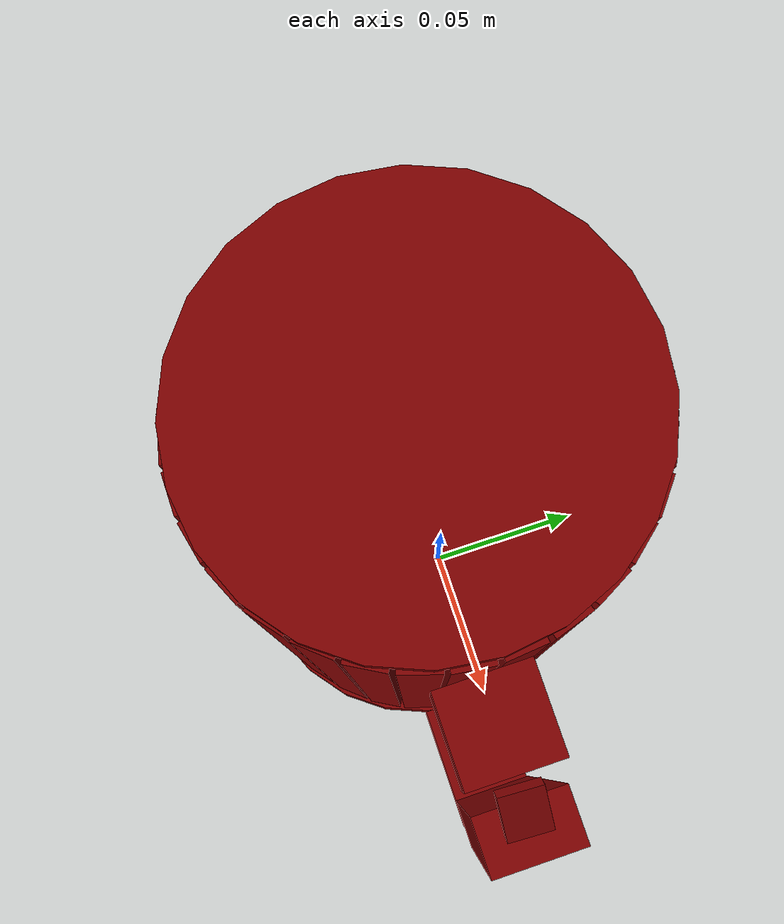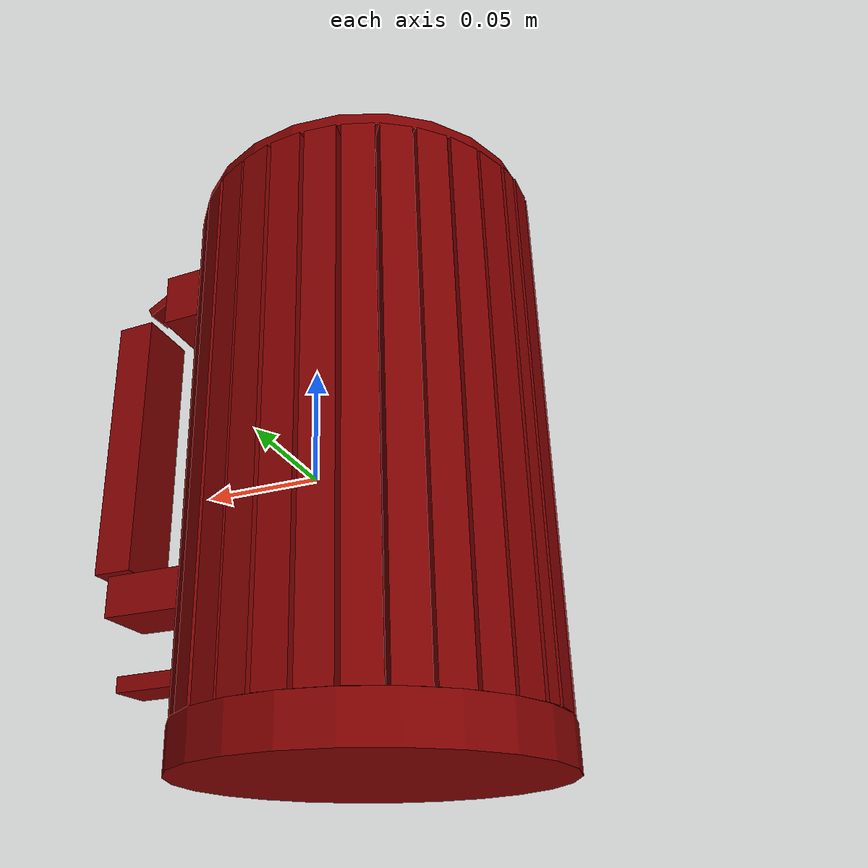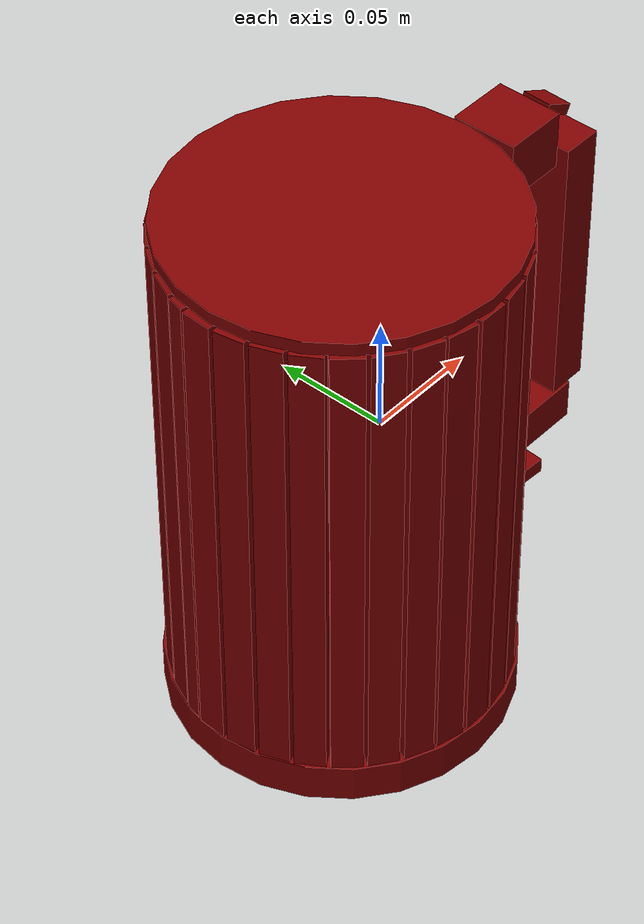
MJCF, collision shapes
<?xml version='1.0' encoding='UTF-8'?>
<mujoco model="model">
  <compiler angle="radian"/>
  <asset>
    <mesh file="visuals/Body001.obj" name="Body001_vis"/>
    <mesh file="visuals/Button001.obj" name="Button001_vis"/>
    <mesh file="visuals/Handle001.obj" name="Handle001_vis"/>
    <mesh file="visuals/Lever001.obj" name="Lever001_vis"/>
    <mesh file="visuals/Lid001.obj" name="Lid001_vis"/>
    <texture file="visuals/T_BC001.png" name="Body001_material" type="2d"/>
    <material name="Body001_material" rgba="1 1 1 1.0" texture="Body001_material" shininess="1" specular="1"/>
    <texture file="visuals/T_BC001.png" name="Handle001_material" type="2d"/>
    <material name="Handle001_material" rgba="1 1 1 1.0" texture="Handle001_material" shininess="1" specular="1"/>
    <texture file="visuals/T_BC001.png" name="Button001_material" type="2d"/>
    <material name="Button001_material" rgba="1 1 1 1.0" texture="Button001_material" shininess="0.2512328028678894" specular="0.3103448502657381"/>
    <texture file="visuals/T_BC001.png" name="Lever001_material" type="2d"/>
    <material name="Lever001_material" rgba="1 1 1 1.0" texture="Lever001_material" shininess="0.2512328028678894" specular="0.3103448502657381"/>
    <texture file="visuals/T_BC001.png" name="Lid001_material" type="2d"/>
    <material name="Lid001_material" rgba="1 1 1 1.0" texture="Lid001_material" shininess="0.2512328028678894" specular="0.3103448502657381"/>
  </asset>
  <default>
    <default class="visual">
      <geom conaffinity="0" contype="0" group="1" type="mesh"/>
    </default>
    <default class="collision">
      <geom group="0" rgba="0.5 0 0 0.5"/>
    </default>
    <default class="spawn">
      <geom group="0" rgba="1 1 1 0.5" contype="0" conaffinity="0"/>
      <site group="0" rgba="1 1 1 0.5"/>
    </default>
    <default class="region">
      <geom group="1" conaffinity="0" contype="0" rgba="0 1 0 0"/>
    </default>
  </default>
  <worldbody>
    <body>
      <body name="object">
        <geom mesh="Body001_vis" type="mesh" solimp="0.998 0.998 0.001" solref="0.001 1" density="100" friction="0.95 0.3 0.1" class="visual" material="Body001_material"/>
        <geom class="collision" type="cylinder" pos="-0.023023681715130806 -3.276069037383422e-05 -0.11071483790874481" size="0.07277010381221771 0.008798042312264442" quat="1.0 -8.146034957690063e-08 0.0 0.0"/>
        <geom class="collision" type="cylinder" pos="-0.023023683577775955 -3.2763189665274695e-05 -0.09461458027362823" size="0.01096278801560402 0.007078821305185556" quat="1.0 -8.146035668232798e-08 0.0 0.0"/>
        <body name="Handle001">
          <joint axis="0.0 0.0 1.0" pos="0.018864015117287636 -0.0031844403129070997 0.0412430614233017" limited="true" name="Handle001_joint" range="0.0 0.15" type="slide" damping="1" frictionloss="1" armature=".01" stiffness="0.05"/>
          <geom mesh="Handle001_vis" type="mesh" solimp="0.998 0.998 0.001" solref="0.001 1" density="100" friction="0.95 0.3 0.1" class="visual" material="Handle001_material"/>
          <geom class="collision" type="box" pos="-0.023034879937767982 -0.06774058938026428 0.005778426770120859" size="0.006442265119403601 0.003759863320738077 0.10746723413467407" quat="1.0 0.0 0.0 0.0"/>
          <geom class="collision" type="box" pos="0.004113842733204365 -0.061874181032180786 0.005778426770120859" size="0.006442171521484852 0.003759845159947872 0.10746721923351288" quat="4.348970890077908e-07 0.20617415010929108 -0.9785153269767761 3.672768400519999e-08"/>
          <geom class="collision" type="box" pos="-0.009210018441081047 -0.06623754650354385 0.005778426770120859" size="0.006442172918468714 0.003759845159947872 0.10746721923351288" quat="4.2588473547766625e-07 0.10693040490150452 -0.9942665100097656 9.05527670624906e-08"/>
          <geom class="collision" type="box" pos="0.01626894250512123 -0.05454995110630989 0.005778426770120859" size="0.006442171521484852 0.0037598456256091595 0.10746721923351288" quat="4.1167294284605305e-07 0.3320642411708832 -0.9432567954063416 1.349511933312897e-07"/>
          <geom class="collision" type="box" pos="0.026787778362631798 -0.04496612399816513 0.005778426770120859" size="0.006442171521484852 0.0037598456256091595 0.10746721923351288" quat="3.698584976064012e-07 0.41601479053497314 -0.9093578457832336 2.326648882444715e-07"/>
          <geom class="collision" type="box" pos="0.03528076782822609 -0.03377407789230347 0.005778426770120859" size="0.006442171987146139 0.0037598456256091595 0.10746721923351288" quat="4.2593117655087553e-07 0.5013291239738464 -0.865256667137146 1.2882948396963911e-07"/>
          <geom class="collision" type="box" pos="0.04107045754790306 -0.021115975454449654 0.005778426770120859" size="0.006442171987146139 0.0037598460912704468 0.10746721923351288" quat="3.0616217827628134e-07 0.5887382626533508 -0.8083237409591675 3.153313343773334e-07"/>
          <geom class="collision" type="box" pos="0.04581490531563759 -0.003122053574770689 -0.09600447863340378" size="0.009686942212283611 0.0037598449271172285 0.004450293257832527" quat="6.601778181902773e-07 0.6742482781410217 -0.7385047078132629 -8.071012302934832e-08"/>
          <geom class="collision" type="box" pos="0.044479336589574814 0.006276293192058802 0.01917729154229164" size="0.006442183628678322 0.0037598456256091595 0.09406835585832596" quat="-2.3746520128042903e-07 -0.7387588024139404 0.6739699244499207 -3.7231245642033173e-07"/>
          <geom class="collision" type="box" pos="0.041773878037929535 0.01991182379424572 0.005778426770120859" size="0.00644217012450099 0.0037598460912704468 0.10746721923351288" quat="2.7327934049026226e-07 0.8089416027069092 -0.5878890156745911 2.476132863193925e-07"/>
          <geom class="collision" type="box" pos="0.03625473007559776 0.03276817873120308 0.005778426770120859" size="0.006442171521484852 0.0037598449271172285 0.10746721923351288" quat="-3.189085973076544e-08 -0.8600682616233826 0.5101789236068726 -4.354070597401005e-07"/>
          <geom class="collision" type="box" pos="0.028138352558016777 0.04413112252950668 0.005778426770120859" size="0.006442170590162277 0.0037598460912704468 0.10746721923351288" quat="2.397534046849614e-07 0.9088814854621887 -0.41705453395843506 3.4146498251175217e-07"/>
          <geom class="collision" type="box" pos="0.01823635958135128 0.05381667613983154 0.005778426770120859" size="0.0064421710558235645 0.0037598456256091595 0.10746721923351288" quat="2.0099133735129726e-07 0.9453177452087402 -0.3261508345603943 3.5107305507153796e-07"/>
          <geom class="collision" type="box" pos="0.006151964422315359 0.06094106286764145 0.005778426770120859" size="0.0064421710558235645 0.0037598449271172285 0.10746721923351288" quat="1.5426923027916928e-07 0.9778256416320801 -0.20942065119743347 3.5980457369078067e-07"/>
          <geom class="collision" type="box" pos="-0.0066388617269694805 0.06565307825803757 0.005778426770120859" size="0.006442171987146139 0.0037598449271172285 0.10746721923351288" quat="1.2839821295074216e-07 0.9908782243728638 -0.13476021587848663 3.8386028222703317e-07"/>
          <geom class="collision" type="box" pos="-0.020278898999094963 0.06771973520517349 0.005778426770120859" size="0.006442171987146139 0.0037598456256091595 0.10746721923351288" quat="2.040321902541109e-07 0.9997295141220093 -0.02325650118291378 3.9859031630840036e-07"/>
          <geom class="collision" type="box" pos="-0.034031666815280914 0.06678034365177155 0.005778426770120859" size="0.0064421710558235645 0.0037598449271172285 0.10746721923351288" quat="1.0381260295844186e-07 -0.9973849654197693 -0.07227186858654022 -3.880241763454251e-07"/>
          <geom class="collision" type="box" pos="-0.047371089458465576 0.06317306309938431 0.005778426770120859" size="0.006442171521484852 0.003759845159947872 0.10746721923351288" quat="1.9359431835397345e-09 0.9829936027526855 0.18363972008228302 4.0075687479657063e-07"/>
          <geom class="collision" type="box" pos="-0.059733547270298004 0.056822746992111206 0.005778426770120859" size="0.0064421710558235645 0.0037598456256091595 0.10746721923351288" quat="-4.064979108875377e-08 0.9561119079589844 0.29300183057785034 3.903171830188512e-07"/>
          <geom class="collision" type="box" pos="-0.07036751508712769 0.04821787774562836 0.005778426770120859" size="0.006442171987146139 0.0037598456256091595 0.10746721923351288" quat="3.3606863780732965e-07 -0.9239467978477478 -0.3825210630893707 -3.0273454854068405e-07"/>
          <geom class="collision" type="box" pos="-0.07916026562452316 0.03773421421647072 0.005778426770120859" size="0.006442171987146139 0.0037598460912704468 0.10746721923351288" quat="-1.2643118907362805e-07 0.8839080333709717 0.4676608145236969 4.004001254998002e-07"/>
          <geom class="collision" type="box" pos="-0.08581119775772095 0.025785086676478386 0.005778426770120859" size="0.006442171987146139 0.0037598460912704468 0.10746721923351288" quat="4.767065604482923e-07 -0.8366203308105469 -0.5477831959724426 -1.5499915662076091e-07"/>
          <geom class="collision" type="box" pos="-0.0369294248521328 -0.06624718010425568 0.005778426770120859" size="0.0064421724528074265 0.0037598456256091595 0.10746721923351288" quat="4.3108633462907164e-07 -0.11771973967552185 -0.9930468797683716 -4.278658849443673e-08"/>
          <geom class="collision" type="box" pos="-0.05002386122941971 -0.06213487312197685 0.005778426770120859" size="0.006442171987146139 0.0037598456256091595 0.10746721923351288" quat="4.169533269759995e-07 -0.2019345611333847 -0.9793990254402161 -1.226243568908103e-07"/>
          <geom class="collision" type="box" pos="-0.062256887555122375 -0.05527814105153084 0.005778426770120859" size="0.006442171521484852 0.0037598456256091595 0.10746721923351288" quat="4.2050552906403027e-07 -0.3024821877479553 -0.9531550407409668 -1.0684529883064897e-07"/>
          <geom class="collision" type="box" pos="-0.07269997149705887 -0.04629600793123245 0.005778426770120859" size="0.006442171987146139 0.0037598456256091595 0.10746721923351288" quat="4.162581888067507e-07 -0.39777764678001404 -0.9174818396568298 -1.2875644017640298e-07"/>
          <geom class="collision" type="box" pos="-0.08097868412733078 -0.03514047712087631 0.005778426770120859" size="0.006442171987146139 0.0037598449271172285 0.10746721923351288" quat="3.63392075541924e-07 -0.4836215674877167 -0.8752772212028503 -2.3790701675352466e-07"/>
          <geom class="collision" type="box" pos="-0.0870208740234375 -0.02278553694486618 0.005778426770120859" size="0.006442170590162277 0.0037598456256091595 0.10746721923351288" quat="3.371456500644854e-07 -0.5654937028884888 -0.8247526288032532 -2.742099809438514e-07"/>
          <geom class="collision" type="box" pos="-0.09076343476772308 -0.009258224628865719 0.005778426770120859" size="0.00644217012450099 0.0037598449271172285 0.10746721923351288" quat="3.715065304277232e-07 -0.6412659883499146 -0.7673186659812927 -2.3088995249054278e-07"/>
          <geom class="collision" type="box" pos="-0.091529980301857 0.004629814065992832 0.005778426770120859" size="0.006442172918468714 0.0037598460912704468 0.10746721923351288" quat="1.5400815982502536e-06 -0.7232064008712769 -0.6906319856643677 9.131218234870175e-07"/>
          <geom class="collision" type="box" pos="-0.08988972008228302 0.015556933358311653 0.005778426770120859" size="0.003726500552147627 0.003759845159947872 0.10746721923351288" quat="3.066882356961287e-07 -0.7830078601837158 -0.6220118403434753 -2.646917209858657e-07"/>
          <geom class="collision" type="box" pos="0.07228168845176697 -0.007208599708974361 -0.039597008377313614" size="0.022511886432766914 0.014028203673660755 0.009019003249704838" quat="1.0 0.0 0.0 0.0"/>
          <geom class="collision" type="box" pos="0.06340934336185455 -0.007028752472251654 0.1050092801451683" size="0.013639543205499649 0.014208050444722176 0.012554212473332882" quat="1.0 0.0 0.0 0.0"/>
          <geom class="collision" type="box" pos="0.09318245202302933 -0.007028752472251654 0.032909683883190155" size="0.008785214275121689 0.014208050444722176 0.06187383458018303" quat="1.0 0.0 0.0 0.0"/>
          <geom class="collision" type="box" pos="0.044371120631694794 -0.007705533877015114 0.020427677780389786" size="0.006442182697355747 0.0037598456256091595 0.09281797707080841" quat="6.462651640504191e-07 0.6575609445571899 -0.7534013390541077 -8.177384103191798e-08"/>
          <body name="Button001">
            <joint axis="0.0 0.0 -1.0" pos="0.08598235994577408 -0.007813122123479843 0.11077475547790527" limited="true" name="Button001_joint" range="0.0 0.0025" type="slide" damping="1" frictionloss="1" armature=".01" stiffness="0.2" springref="-1"/>
            <geom mesh="Button001_vis" type="mesh" solimp="0.998 0.998 0.001" solref="0.001 1" density="100" friction="0.95 0.3 0.1" class="visual" material="Button001_material"/>
            <geom class="collision" type="box" pos="0.086179219186306 -0.0077461921609938145 0.1106448695063591" size="0.0066857365891337395 0.006490183062851429 0.002256079576909542" quat="0.974043607711792 -0.006441202946007252 0.22453685104846954 -0.027941640466451645"/>
          </body>
          <body name="Lever001">
            <joint axis="0.0 0.0 -1.0" pos="0.0663880705833435 -0.004385690670460463 -0.07669314742088318" limited="true" name="Lever001_joint" range="0.0 0.01" type="slide" damping="1" frictionloss="1" armature=".01" stiffness="0.2" springref="-1"/>
            <geom mesh="Lever001_vis" type="mesh" solimp="0.998 0.998 0.001" solref="0.001 1" density="100" friction="0.95 0.3 0.1" class="visual" material="Lever001_material"/>
            <geom class="collision" type="box" pos="0.06879474222660065 -0.005083506926894188 -0.07645479589700699" size="0.019173555076122284 0.00886817742139101 0.0033816301729530096" quat="0.9995887875556946 -8.142684748690954e-08 2.335827753441322e-09 -0.02867441438138485"/>
          </body>
          <body name="Lid001">
            <joint axis="0.0 1.0 0.0" pos="0.05128675326704979 -0.005694232415407896 0.11794690042734146" limited="true" name="Lid001_joint" range="0.0 1.5707963267948966" type="hinge" damping="1" frictionloss="1" armature=".01" stiffness="0.05"/>
            <geom mesh="Lid001_vis" type="mesh" solimp="0.998 0.998 0.001" solref="0.001 1" density="100" friction="0.95 0.3 0.1" class="visual" material="Lid001_material"/>
            <geom class="collision" type="cylinder" pos="-0.023023683577775955 -3.276097049820237e-05 0.1074153333902359" size="0.0625920295715332 0.005675722844898701" quat="1.0 -8.146034247147327e-08 0.0 0.0"/>
            <geom class="collision" type="cylinder" pos="-0.023023681715130806 -3.2760748581495136e-05 0.11643494665622711" size="0.07064686715602875 0.0027365137357264757" quat="1.0 -8.146034247147327e-08 0.0 0.0"/>
          </body>
        </body>
        <geom class="region" name="reg_main" type="box" pos="-1.6763806343078613e-08 1.862645149230957e-09 3.725290298461914e-09" size="0.10280673205852509 0.07296589761972427 0.11952702701091766"/>
      </body>
    </body>
  </worldbody>
  <actuator>
    <motor name="Handle001_joint_actuator" joint="Handle001_joint" gear="20"/>
    <motor name="Button001_joint_actuator" joint="Button001_joint" gear="0.5"/>
    <motor name="Lever001_joint_actuator" joint="Lever001_joint" gear="1"/>
    <motor name="Lid001_joint_actuator" joint="Lid001_joint" gear="10"/>
  </actuator>
</mujoco>
